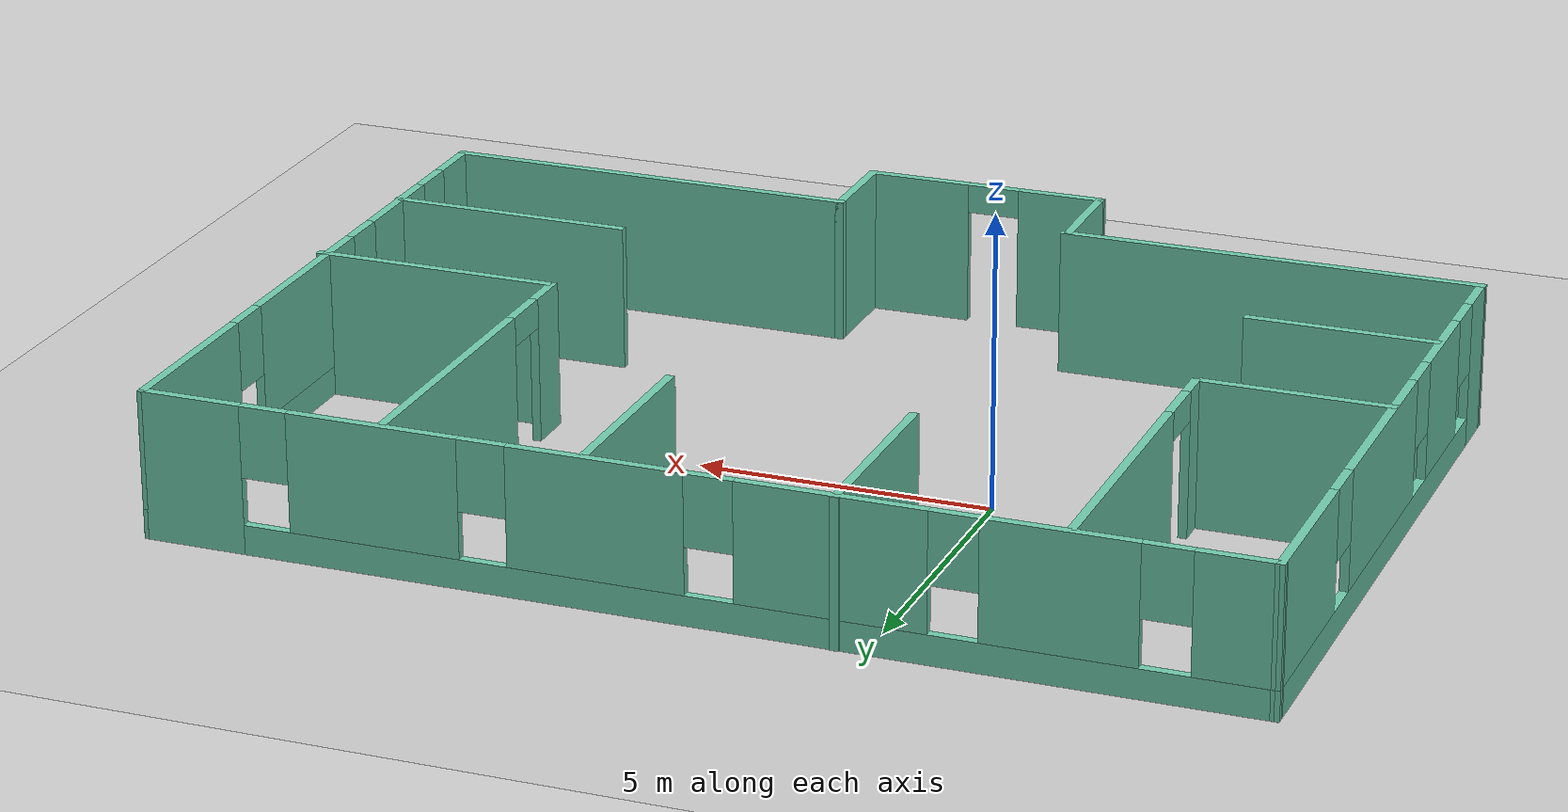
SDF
<sdf version="1.6">
 <world name="default">
  <model name="ground_plane">
   <static>1</static>
   <link name="link">
    <collision name="collision">
     <geometry><plane><normal>0 0 1</normal><size>100 100</size></plane></geometry>
     <surface><friction><ode><mu>100</mu><mu2>50</mu2></ode></friction></surface>
    </collision>
    <visual name="visual">
     <cast_shadows>0</cast_shadows>
     <geometry><plane><normal>0 0 1</normal><size>100 100</size></plane></geometry>
     <material>
      <script><uri>file://media/materials/scripts/gazebo.material</uri><name>Gazebo/Grey</name></script>
     </material>
    </visual>
   </link>
  </model>
  <model name="ER_building">
   <pose>2.87526 -1.01785 0 0 -0 0</pose>
   <link name="Wall_10">
    <collision name="Wall_10_Collision">
     <geometry><box><size>7.29057 0.15 2.5</size></box></geometry>
     <pose>0 0 1.25 0 -0 0</pose>
    </collision>
    <visual name="Wall_10_Visual">
     <pose>0 0 1.25 0 -0 0</pose>
     <geometry><box><size>7.29057 0.15 2.5</size></box></geometry>
     <material>
      <script><uri>file://media/materials/scripts/gazebo.material</uri><name>Gazebo/Grey</name></script>
      <ambient>0.435294 0.796078 0.67451 1</ambient>
     </material>
     <meta><layer>0</layer></meta>
    </visual>
    <pose>-5.64334 -5.06011 0 0 0 -3.13593</pose>
   </link>
   <link name="Wall_11">
    <pose>-9.21357 0.84466 0 0 -0 1.5708</pose>
    <visual name="Wall_11_Visual_0">
     <pose>-5.51337 0 1.25 0 -0 0</pose>
     <geometry><box><size>0.973269 0.15 2.5</size></box></geometry>
     <material>
      <script><uri>file://media/materials/scripts/gazebo.material</uri><name>Gazebo/Grey</name></script>
      <ambient>0.435294 0.796078 0.67451 1</ambient>
     </material>
     <meta><layer>0</layer></meta>
    </visual>
    <collision name="Wall_11_Collision_0">
     <geometry><box><size>0.973269 0.15 2.5</size></box></geometry>
     <pose>-5.51337 0 1.25 0 -0 0</pose>
    </collision>
    <visual name="Wall_11_Visual_1">
     <pose>0.486634 0 0.25 0 -0 0</pose>
     <geometry><box><size>11.0267 0.15 0.5</size></box></geometry>
     <material>
      <script><uri>file://media/materials/scripts/gazebo.material</uri><name>Gazebo/Grey</name></script>
      <ambient>0.435294 0.796078 0.67451 1</ambient>
     </material>
     <meta><layer>0</layer></meta>
    </visual>
    <collision name="Wall_11_Collision_1">
     <geometry><box><size>11.0267 0.15 0.5</size></box></geometry>
     <pose>0.486634 0 0.25 0 -0 0</pose>
    </collision>
    <visual name="Wall_11_Visual_2">
     <pose>-3.27147 0 1.5 0 -0 0</pose>
     <geometry><box><size>1.91052 0.15 2</size></box></geometry>
     <material>
      <script><uri>file://media/materials/scripts/gazebo.material</uri><name>Gazebo/Grey</name></script>
      <ambient>0.435294 0.796078 0.67451 1</ambient>
     </material>
     <meta><layer>0</layer></meta>
    </visual>
    <collision name="Wall_11_Collision_2">
     <geometry><box><size>1.91052 0.15 2</size></box></geometry>
     <pose>-3.27147 0 1.5 0 -0 0</pose>
    </collision>
    <visual name="Wall_11_Visual_3">
     <pose>0.38976 0 1.5 0 -0 0</pose>
     <geometry><box><size>3.81194 0.15 2</size></box></geometry>
     <material>
      <script><uri>file://media/materials/scripts/gazebo.material</uri><name>Gazebo/Grey</name></script>
      <ambient>0.435294 0.796078 0.67451 1</ambient>
     </material>
     <meta><layer>0</layer></meta>
    </visual>
    <collision name="Wall_11_Collision_3">
     <geometry><box><size>3.81194 0.15 2</size></box></geometry>
     <pose>0.38976 0 1.5 0 -0 0</pose>
    </collision>
    <visual name="Wall_11_Visual_4">
     <pose>4.54786 0 1.5 0 -0 0</pose>
     <geometry><box><size>2.90427 0.15 2</size></box></geometry>
     <material>
      <script><uri>file://media/materials/scripts/gazebo.material</uri><name>Gazebo/Grey</name></script>
      <ambient>0.435294 0.796078 0.67451 1</ambient>
     </material>
     <meta><layer>0</layer></meta>
    </visual>
    <collision name="Wall_11_Collision_4">
     <geometry><box><size>2.90427 0.15 2</size></box></geometry>
     <pose>4.54786 0 1.5 0 -0 0</pose>
    </collision>
    <visual name="Wall_11_Visual_5">
     <pose>-4.62673 0 1.9 0 -0 0</pose>
     <geometry><box><size>0.8 0.15 1.2</size></box></geometry>
     <material>
      <script><uri>file://media/materials/scripts/gazebo.material</uri><name>Gazebo/Grey</name></script>
      <ambient>0.435294 0.796078 0.67451 1</ambient>
     </material>
     <meta><layer>0</layer></meta>
    </visual>
    <collision name="Wall_11_Collision_5">
     <geometry><box><size>0.8 0.15 1.2</size></box></geometry>
     <pose>-4.62673 0 1.9 0 -0 0</pose>
    </collision>
    <visual name="Wall_11_Visual_6">
     <pose>-1.91621 0 1.9 0 -0 0</pose>
     <geometry><box><size>0.8 0.15 1.2</size></box></geometry>
     <material>
      <script><uri>file://media/materials/scripts/gazebo.material</uri><name>Gazebo/Grey</name></script>
      <ambient>0.435294 0.796078 0.67451 1</ambient>
     </material>
     <meta><layer>0</layer></meta>
    </visual>
    <collision name="Wall_11_Collision_6">
     <geometry><box><size>0.8 0.15 1.2</size></box></geometry>
     <pose>-1.91621 0 1.9 0 -0 0</pose>
    </collision>
    <visual name="Wall_11_Visual_7">
     <pose>2.69573 0 1.9 0 -0 0</pose>
     <geometry><box><size>0.8 0.15 1.2</size></box></geometry>
     <material>
      <script><uri>file://media/materials/scripts/gazebo.material</uri><name>Gazebo/Grey</name></script>
      <ambient>0.435294 0.796078 0.67451 1</ambient>
     </material>
     <meta><layer>0</layer></meta>
    </visual>
    <collision name="Wall_11_Collision_7">
     <geometry><box><size>0.8 0.15 1.2</size></box></geometry>
     <pose>2.69573 0 1.9 0 -0 0</pose>
    </collision>
   </link>
   <link name="Wall_14">
    <collision name="Wall_14_Collision">
     <geometry><box><size>7.25 0.15 2.5</size></box></geometry>
     <pose>0 0 1.25 0 -0 0</pose>
    </collision>
    <visual name="Wall_14_Visual">
     <pose>0 0 1.25 0 -0 0</pose>
     <geometry><box><size>7.25 0.15 2.5</size></box></geometry>
     <material>
      <script><uri>file://media/materials/scripts/gazebo.material</uri><name>Gazebo/Grey</name></script>
      <ambient>0.435294 0.796078 0.67451 1</ambient>
     </material>
     <meta><layer>0</layer></meta>
    </visual>
    <pose>5.56316 -5.11758 0 0 -0 0</pose>
   </link>
   <link name="Wall_16">
    <collision name="Wall_16_Collision">
     <geometry><box><size>1.75 0.15 2.5</size></box></geometry>
     <pose>0 0 1.25 0 -0 0</pose>
    </collision>
    <visual name="Wall_16_Visual">
     <pose>0 0 1.25 0 -0 0</pose>
     <geometry><box><size>1.75 0.15 2.5</size></box></geometry>
     <material>
      <script><uri>file://media/materials/scripts/gazebo.material</uri><name>Gazebo/Grey</name></script>
      <ambient>0.435294 0.796078 0.67451 1</ambient>
     </material>
     <meta><layer>0</layer></meta>
    </visual>
    <pose>2.01316 -5.91758 0 0 0 -1.5708</pose>
   </link>
   <link name="Wall_17">
    <pose>-0.050206 -6.74668 0 0 0 -3.12749</pose>
    <visual name="Wall_17_Visual_0">
     <pose>-1.21254 0 1.25 0 -0 0</pose>
     <geometry><box><size>1.85205 0.15 2.5</size></box></geometry>
     <material>
      <script><uri>file://media/materials/scripts/gazebo.material</uri><name>Gazebo/Grey</name></script>
      <ambient>0.435294 0.796078 0.67451 1</ambient>
     </material>
     <meta><layer>0</layer></meta>
    </visual>
    <collision name="Wall_17_Collision_0">
     <geometry><box><size>1.85205 0.15 2.5</size></box></geometry>
     <pose>-1.21254 0 1.25 0 -0 0</pose>
    </collision>
    <visual name="Wall_17_Visual_1">
     <pose>1.37603 0 1.25 0 -0 0</pose>
     <geometry><box><size>1.52508 0.15 2.5</size></box></geometry>
     <material>
      <script><uri>file://media/materials/scripts/gazebo.material</uri><name>Gazebo/Grey</name></script>
      <ambient>0.435294 0.796078 0.67451 1</ambient>
     </material>
     <meta><layer>0</layer></meta>
    </visual>
    <collision name="Wall_17_Collision_1">
     <geometry><box><size>1.52508 0.15 2.5</size></box></geometry>
     <pose>1.37603 0 1.25 0 -0 0</pose>
    </collision>
    <visual name="Wall_17_Visual_2">
     <pose>0.163486 0 2.25 0 -0 0</pose>
     <geometry><box><size>0.9 0.15 0.5</size></box></geometry>
     <material>
      <script><uri>file://media/materials/scripts/gazebo.material</uri><name>Gazebo/Grey</name></script>
      <ambient>0.435294 0.796078 0.67451 1</ambient>
     </material>
     <meta><layer>0</layer></meta>
    </visual>
    <collision name="Wall_17_Collision_2">
     <geometry><box><size>0.9 0.15 0.5</size></box></geometry>
     <pose>0.163486 0 2.25 0 -0 0</pose>
    </collision>
   </link>
   <link name="Wall_19">
    <pose>9.11316 0.807418 0 0 -0 1.5708</pose>
    <visual name="Wall_19_Visual_0">
     <pose>-5.47452 0 1.25 0 -0 0</pose>
     <geometry><box><size>1.05097 0.15 2.5</size></box></geometry>
     <material>
      <script><uri>file://media/materials/scripts/gazebo.material</uri><name>Gazebo/Grey</name></script>
      <ambient>0.435294 0.796078 0.67451 1</ambient>
     </material>
     <meta><layer>0</layer></meta>
    </visual>
    <collision name="Wall_19_Collision_0">
     <geometry><box><size>1.05097 0.15 2.5</size></box></geometry>
     <pose>-5.47452 0 1.25 0 -0 0</pose>
    </collision>
    <visual name="Wall_19_Visual_1">
     <pose>0.525483 0 0.25 0 -0 0</pose>
     <geometry><box><size>10.949 0.15 0.5</size></box></geometry>
     <material>
      <script><uri>file://media/materials/scripts/gazebo.material</uri><name>Gazebo/Grey</name></script>
      <ambient>0.435294 0.796078 0.67451 1</ambient>
     </material>
     <meta><layer>0</layer></meta>
    </visual>
    <collision name="Wall_19_Collision_1">
     <geometry><box><size>10.949 0.15 0.5</size></box></geometry>
     <pose>0.525483 0 0.25 0 -0 0</pose>
    </collision>
    <visual name="Wall_19_Visual_2">
     <pose>-3.17354 0 1.5 0 -0 0</pose>
     <geometry><box><size>1.95098 0.15 2</size></box></geometry>
     <material>
      <script><uri>file://media/materials/scripts/gazebo.material</uri><name>Gazebo/Grey</name></script>
      <ambient>0.435294 0.796078 0.67451 1</ambient>
     </material>
     <meta><layer>0</layer></meta>
    </visual>
    <collision name="Wall_19_Collision_2">
     <geometry><box><size>1.95098 0.15 2</size></box></geometry>
     <pose>-3.17354 0 1.5 0 -0 0</pose>
    </collision>
    <visual name="Wall_19_Visual_3">
     <pose>0.325863 0 1.5 0 -0 0</pose>
     <geometry><box><size>3.44784 0.15 2</size></box></geometry>
     <material>
      <script><uri>file://media/materials/scripts/gazebo.material</uri><name>Gazebo/Grey</name></script>
      <ambient>0.435294 0.796078 0.67451 1</ambient>
     </material>
     <meta><layer>0</layer></meta>
    </visual>
    <collision name="Wall_19_Collision_3">
     <geometry><box><size>3.44784 0.15 2</size></box></geometry>
     <pose>0.325863 0 1.5 0 -0 0</pose>
    </collision>
    <visual name="Wall_19_Visual_4">
     <pose>4.42489 0 1.5 0 -0 0</pose>
     <geometry><box><size>3.15022 0.15 2</size></box></geometry>
     <material>
      <script><uri>file://media/materials/scripts/gazebo.material</uri><name>Gazebo/Grey</name></script>
      <ambient>0.435294 0.796078 0.67451 1</ambient>
     </material>
     <meta><layer>0</layer></meta>
    </visual>
    <collision name="Wall_19_Collision_4">
     <geometry><box><size>3.15022 0.15 2</size></box></geometry>
     <pose>4.42489 0 1.5 0 -0 0</pose>
    </collision>
    <visual name="Wall_19_Visual_5">
     <pose>-4.54903 0 1.9 0 -0 0</pose>
     <geometry><box><size>0.8 0.15 1.2</size></box></geometry>
     <material>
      <script><uri>file://media/materials/scripts/gazebo.material</uri><name>Gazebo/Grey</name></script>
      <ambient>0.435294 0.796078 0.67451 1</ambient>
     </material>
     <meta><layer>0</layer></meta>
    </visual>
    <collision name="Wall_19_Collision_5">
     <geometry><box><size>0.8 0.15 1.2</size></box></geometry>
     <pose>-4.54903 0 1.9 0 -0 0</pose>
    </collision>
    <visual name="Wall_19_Visual_6">
     <pose>-1.79805 0 1.9 0 -0 0</pose>
     <geometry><box><size>0.8 0.15 1.2</size></box></geometry>
     <material>
      <script><uri>file://media/materials/scripts/gazebo.material</uri><name>Gazebo/Grey</name></script>
      <ambient>0.435294 0.796078 0.67451 1</ambient>
     </material>
     <meta><layer>0</layer></meta>
    </visual>
    <collision name="Wall_19_Collision_6">
     <geometry><box><size>0.8 0.15 1.2</size></box></geometry>
     <pose>-1.79805 0 1.9 0 -0 0</pose>
    </collision>
    <visual name="Wall_19_Visual_7">
     <pose>2.44978 0 1.9 0 -0 0</pose>
     <geometry><box><size>0.8 0.15 1.2</size></box></geometry>
     <material>
      <script><uri>file://media/materials/scripts/gazebo.material</uri><name>Gazebo/Grey</name></script>
      <ambient>0.435294 0.796078 0.67451 1</ambient>
     </material>
     <meta><layer>0</layer></meta>
    </visual>
    <collision name="Wall_19_Collision_7">
     <geometry><box><size>0.8 0.15 1.2</size></box></geometry>
     <pose>2.44978 0 1.9 0 -0 0</pose>
    </collision>
   </link>
   <link name="Wall_21">
    <pose>-0.050206 6.75104 0 0 -0 3.13956</pose>
    <visual name="Wall_21_Visual_0">
     <pose>-8.35916 0 1.25 0 -0 0</pose>
     <geometry><box><size>1.75844 0.15 2.5</size></box></geometry>
     <material>
      <script><uri>file://media/materials/scripts/gazebo.material</uri><name>Gazebo/Grey</name></script>
      <ambient>0.435294 0.796078 0.67451 1</ambient>
     </material>
     <meta><layer>0</layer></meta>
    </visual>
    <collision name="Wall_21_Collision_0">
     <geometry><box><size>1.75844 0.15 2.5</size></box></geometry>
     <pose>-8.35916 0 1.25 0 -0 0</pose>
    </collision>
    <visual name="Wall_21_Visual_1">
     <pose>0.87922 0 0.25 0 -0 0</pose>
     <geometry><box><size>16.7183 0.15 0.5</size></box></geometry>
     <material>
      <script><uri>file://media/materials/scripts/gazebo.material</uri><name>Gazebo/Grey</name></script>
      <ambient>0.435294 0.796078 0.67451 1</ambient>
     </material>
     <meta><layer>0</layer></meta>
    </visual>
    <collision name="Wall_21_Collision_1">
     <geometry><box><size>16.7183 0.15 0.5</size></box></geometry>
     <pose>0.87922 0 0.25 0 -0 0</pose>
    </collision>
    <visual name="Wall_21_Visual_2">
     <pose>-5.23914 0 1.5 0 -0 0</pose>
     <geometry><box><size>2.88162 0.15 2</size></box></geometry>
     <material>
      <script><uri>file://media/materials/scripts/gazebo.material</uri><name>Gazebo/Grey</name></script>
      <ambient>0.435294 0.796078 0.67451 1</ambient>
     </material>
     <meta><layer>0</layer></meta>
    </visual>
    <collision name="Wall_21_Collision_2">
     <geometry><box><size>2.88162 0.15 2</size></box></geometry>
     <pose>-5.23914 0 1.5 0 -0 0</pose>
    </collision>
    <visual name="Wall_21_Visual_3">
     <pose>-1.53737 0 1.5 0 -0 0</pose>
     <geometry><box><size>2.92191 0.15 2</size></box></geometry>
     <material>
      <script><uri>file://media/materials/scripts/gazebo.material</uri><name>Gazebo/Grey</name></script>
      <ambient>0.435294 0.796078 0.67451 1</ambient>
     </material>
     <meta><layer>0</layer></meta>
    </visual>
    <collision name="Wall_21_Collision_3">
     <geometry><box><size>2.92191 0.15 2</size></box></geometry>
     <pose>-1.53737 0 1.5 0 -0 0</pose>
    </collision>
    <visual name="Wall_21_Visual_4">
     <pose>2.26532 0 1.5 0 -0 0</pose>
     <geometry><box><size>3.08348 0.15 2</size></box></geometry>
     <material>
      <script><uri>file://media/materials/scripts/gazebo.material</uri><name>Gazebo/Grey</name></script>
      <ambient>0.435294 0.796078 0.67451 1</ambient>
     </material>
     <meta><layer>0</layer></meta>
    </visual>
    <collision name="Wall_21_Collision_4">
     <geometry><box><size>3.08348 0.15 2</size></box></geometry>
     <pose>2.26532 0 1.5 0 -0 0</pose>
    </collision>
    <visual name="Wall_21_Visual_5">
     <pose>5.84571 0 1.5 0 -0 0</pose>
     <geometry><box><size>2.47731 0.15 2</size></box></geometry>
     <material>
      <script><uri>file://media/materials/scripts/gazebo.material</uri><name>Gazebo/Grey</name></script>
      <ambient>0.435294 0.796078 0.67451 1</ambient>
     </material>
     <meta><layer>0</layer></meta>
    </visual>
    <collision name="Wall_21_Collision_5">
     <geometry><box><size>2.47731 0.15 2</size></box></geometry>
     <pose>5.84571 0 1.5 0 -0 0</pose>
    </collision>
    <visual name="Wall_21_Visual_6">
     <pose>8.56137 0 1.5 0 -0 0</pose>
     <geometry><box><size>1.35402 0.15 2</size></box></geometry>
     <material>
      <script><uri>file://media/materials/scripts/gazebo.material</uri><name>Gazebo/Grey</name></script>
      <ambient>0.435294 0.796078 0.67451 1</ambient>
     </material>
     <meta><layer>0</layer></meta>
    </visual>
    <collision name="Wall_21_Collision_6">
     <geometry><box><size>1.35402 0.15 2</size></box></geometry>
     <pose>8.56137 0 1.5 0 -0 0</pose>
    </collision>
    <visual name="Wall_21_Visual_7">
     <pose>-7.07994 0 1.9 0 -0 0</pose>
     <geometry><box><size>0.8 0.15 1.2</size></box></geometry>
     <material>
      <script><uri>file://media/materials/scripts/gazebo.material</uri><name>Gazebo/Grey</name></script>
      <ambient>0.435294 0.796078 0.67451 1</ambient>
     </material>
     <meta><layer>0</layer></meta>
    </visual>
    <collision name="Wall_21_Collision_7">
     <geometry><box><size>0.8 0.15 1.2</size></box></geometry>
     <pose>-7.07994 0 1.9 0 -0 0</pose>
    </collision>
    <visual name="Wall_21_Visual_8">
     <pose>-3.39833 0 1.9 0 -0 0</pose>
     <geometry><box><size>0.8 0.15 1.2</size></box></geometry>
     <material>
      <script><uri>file://media/materials/scripts/gazebo.material</uri><name>Gazebo/Grey</name></script>
      <ambient>0.435294 0.796078 0.67451 1</ambient>
     </material>
     <meta><layer>0</layer></meta>
    </visual>
    <collision name="Wall_21_Collision_8">
     <geometry><box><size>0.8 0.15 1.2</size></box></geometry>
     <pose>-3.39833 0 1.9 0 -0 0</pose>
    </collision>
    <visual name="Wall_21_Visual_9">
     <pose>0.323578 0 1.9 0 -0 0</pose>
     <geometry><box><size>0.8 0.15 1.2</size></box></geometry>
     <material>
      <script><uri>file://media/materials/scripts/gazebo.material</uri><name>Gazebo/Grey</name></script>
      <ambient>0.435294 0.796078 0.67451 1</ambient>
     </material>
     <meta><layer>0</layer></meta>
    </visual>
    <collision name="Wall_21_Collision_9">
     <geometry><box><size>0.8 0.15 1.2</size></box></geometry>
     <pose>0.323578 0 1.9 0 -0 0</pose>
    </collision>
    <visual name="Wall_21_Visual_10">
     <pose>4.20706 0 1.9 0 -0 0</pose>
     <geometry><box><size>0.8 0.15 1.2</size></box></geometry>
     <material>
      <script><uri>file://media/materials/scripts/gazebo.material</uri><name>Gazebo/Grey</name></script>
      <ambient>0.435294 0.796078 0.67451 1</ambient>
     </material>
     <meta><layer>0</layer></meta>
    </visual>
    <collision name="Wall_21_Collision_10">
     <geometry><box><size>0.8 0.15 1.2</size></box></geometry>
     <pose>4.20706 0 1.9 0 -0 0</pose>
    </collision>
    <visual name="Wall_21_Visual_11">
     <pose>7.48437 0 1.9 0 -0 0</pose>
     <geometry><box><size>0.8 0.15 1.2</size></box></geometry>
     <material>
      <script><uri>file://media/materials/scripts/gazebo.material</uri><name>Gazebo/Grey</name></script>
      <ambient>0.435294 0.796078 0.67451 1</ambient>
     </material>
     <meta><layer>0</layer></meta>
    </visual>
    <collision name="Wall_21_Collision_11">
     <geometry><box><size>0.8 0.15 1.2</size></box></geometry>
     <pose>7.48437 0 1.9 0 -0 0</pose>
    </collision>
   </link>
   <link name="Wall_23">
    <pose>-6.03776 3.60547 0 0 0 -1.5708</pose>
    <visual name="Wall_23_Visual_0">
     <pose>-0.723343 0 1.25 0 -0 0</pose>
     <geometry><box><size>4.80331 0.15 2.5</size></box></geometry>
     <material>
      <script><uri>file://media/materials/scripts/gazebo.material</uri><name>Gazebo/Grey</name></script>
      <ambient>0.435294 0.796078 0.67451 1</ambient>
     </material>
     <meta><layer>0</layer></meta>
    </visual>
    <collision name="Wall_23_Collision_0">
     <geometry><box><size>4.80331 0.15 2.5</size></box></geometry>
     <pose>-0.723343 0 1.25 0 -0 0</pose>
    </collision>
    <visual name="Wall_23_Visual_1">
     <pose>2.85166 0 1.25 0 -0 0</pose>
     <geometry><box><size>0.546686 0.15 2.5</size></box></geometry>
     <material>
      <script><uri>file://media/materials/scripts/gazebo.material</uri><name>Gazebo/Grey</name></script>
      <ambient>0.435294 0.796078 0.67451 1</ambient>
     </material>
     <meta><layer>0</layer></meta>
    </visual>
    <collision name="Wall_23_Collision_1">
     <geometry><box><size>0.546686 0.15 2.5</size></box></geometry>
     <pose>2.85166 0 1.25 0 -0 0</pose>
    </collision>
    <visual name="Wall_23_Visual_2">
     <pose>2.12831 0 2.25 0 -0 0</pose>
     <geometry><box><size>0.9 0.15 0.5</size></box></geometry>
     <material>
      <script><uri>file://media/materials/scripts/gazebo.material</uri><name>Gazebo/Grey</name></script>
      <ambient>0.435294 0.796078 0.67451 1</ambient>
     </material>
     <meta><layer>0</layer></meta>
    </visual>
    <collision name="Wall_23_Collision_2">
     <geometry><box><size>0.9 0.15 0.5</size></box></geometry>
     <pose>2.12831 0 2.25 0 -0 0</pose>
    </collision>
   </link>
   <link name="Wall_25">
    <collision name="Wall_25_Collision">
     <geometry><box><size>3.5 0.15 2.5</size></box></geometry>
     <pose>0 0 1.25 0 -0 0</pose>
    </collision>
    <visual name="Wall_25_Visual">
     <pose>0 0 1.25 0 -0 0</pose>
     <geometry><box><size>3.5 0.15 2.5</size></box></geometry>
     <material>
      <script><uri>file://media/materials/scripts/gazebo.material</uri><name>Gazebo/Grey</name></script>
      <ambient>0.435294 0.796078 0.67451 1</ambient>
     </material>
     <meta><layer>0</layer></meta>
    </visual>
    <pose>-2.39676 5.10183 0 0 0 -1.5708</pose>
   </link>
   <link name="Wall_27">
    <collision name="Wall_27_Collision">
     <geometry><box><size>3.5 0.15 2.5</size></box></geometry>
     <pose>0 0 1.25 0 -0 0</pose>
    </collision>
    <visual name="Wall_27_Visual">
     <pose>0 0 1.25 0 -0 0</pose>
     <geometry><box><size>3.5 0.15 2.5</size></box></geometry>
     <material>
      <script><uri>file://media/materials/scripts/gazebo.material</uri><name>Gazebo/Grey</name></script>
      <ambient>0.435294 0.796078 0.67451 1</ambient>
     </material>
     <meta><layer>0</layer></meta>
    </visual>
    <pose>1.68926 5.02092 0 0 0 -1.5708</pose>
   </link>
   <link name="Wall_29">
    <pose>5.04707 3.44001 0 0 0 -1.5708</pose>
    <visual name="Wall_29_Visual_0">
     <pose>-0.848343 0 1.25 0 -0 0</pose>
     <geometry><box><size>4.80331 0.15 2.5</size></box></geometry>
     <material>
      <script><uri>file://media/materials/scripts/gazebo.material</uri><name>Gazebo/Grey</name></script>
      <ambient>0.435294 0.796078 0.67451 1</ambient>
     </material>
     <meta><layer>0</layer></meta>
    </visual>
    <collision name="Wall_29_Collision_0">
     <geometry><box><size>4.80331 0.15 2.5</size></box></geometry>
     <pose>-0.848343 0 1.25 0 -0 0</pose>
    </collision>
    <visual name="Wall_29_Visual_1">
     <pose>2.85166 0 1.25 0 -0 0</pose>
     <geometry><box><size>0.796686 0.15 2.5</size></box></geometry>
     <material>
      <script><uri>file://media/materials/scripts/gazebo.material</uri><name>Gazebo/Grey</name></script>
      <ambient>0.435294 0.796078 0.67451 1</ambient>
     </material>
     <meta><layer>0</layer></meta>
    </visual>
    <collision name="Wall_29_Collision_1">
     <geometry><box><size>0.796686 0.15 2.5</size></box></geometry>
     <pose>2.85166 0 1.25 0 -0 0</pose>
    </collision>
    <visual name="Wall_29_Visual_2">
     <pose>2.00331 0 2.25 0 -0 0</pose>
     <geometry><box><size>0.9 0.15 0.5</size></box></geometry>
     <material>
      <script><uri>file://media/materials/scripts/gazebo.material</uri><name>Gazebo/Grey</name></script>
      <ambient>0.435294 0.796078 0.67451 1</ambient>
     </material>
     <meta><layer>0</layer></meta>
    </visual>
    <collision name="Wall_29_Collision_2">
     <geometry><box><size>0.9 0.15 0.5</size></box></geometry>
     <pose>2.00331 0 2.25 0 -0 0</pose>
    </collision>
   </link>
   <link name="Wall_31">
    <collision name="Wall_31_Collision">
     <geometry><box><size>3.25 0.15 2.5</size></box></geometry>
     <pose>0 0 1.25 0 -0 0</pose>
    </collision>
    <visual name="Wall_31_Visual">
     <pose>0 0 1.25 0 -0 0</pose>
     <geometry><box><size>3.25 0.15 2.5</size></box></geometry>
     <material>
      <script><uri>file://media/materials/scripts/gazebo.material</uri><name>Gazebo/Grey</name></script>
      <ambient>0.435294 0.796078 0.67451 1</ambient>
     </material>
     <meta><layer>0</layer></meta>
    </visual>
    <pose>-7.60284 -2.36613 0 0 -0 0</pose>
   </link>
   <link name="Wall_33">
    <collision name="Wall_33_Collision">
     <geometry><box><size>3.25 0.15 2.5</size></box></geometry>
     <pose>0 0 1.25 0 -0 0</pose>
    </collision>
    <visual name="Wall_33_Visual">
     <pose>0 0 1.25 0 -0 0</pose>
     <geometry><box><size>3.25 0.15 2.5</size></box></geometry>
     <material>
      <script><uri>file://media/materials/scripts/gazebo.material</uri><name>Gazebo/Grey</name></script>
      <ambient>0.435294 0.796078 0.67451 1</ambient>
     </material>
     <meta><layer>0</layer></meta>
    </visual>
    <pose>-7.6433 0.50622 0 0 -0 0</pose>
   </link>
   <link name="Wall_35">
    <collision name="Wall_35_Collision">
     <geometry><box><size>4.25 0.15 2.5</size></box></geometry>
     <pose>0 0 1.25 0 -0 0</pose>
    </collision>
    <visual name="Wall_35_Visual">
     <pose>0 0 1.25 0 -0 0</pose>
     <geometry><box><size>4.25 0.15 2.5</size></box></geometry>
     <material>
      <script><uri>file://media/materials/scripts/gazebo.material</uri><name>Gazebo/Grey</name></script>
      <ambient>0.435294 0.796078 0.67451 1</ambient>
     </material>
     <meta><layer>0</layer></meta>
    </visual>
    <pose>7.08308 -2.5684 0 0 -0 3.14159</pose>
   </link>
   <link name="Wall_37">
    <collision name="Wall_37_Collision">
     <geometry><box><size>4.25 0.15 2.5</size></box></geometry>
     <pose>0 0 1.25 0 -0 0</pose>
    </collision>
    <visual name="Wall_37_Visual">
     <pose>0 0 1.25 0 -0 0</pose>
     <geometry><box><size>4.25 0.15 2.5</size></box></geometry>
     <material>
      <script><uri>file://media/materials/scripts/gazebo.material</uri><name>Gazebo/Grey</name></script>
      <ambient>0.435294 0.796078 0.67451 1</ambient>
     </material>
     <meta><layer>0</layer></meta>
    </visual>
    <pose>7.16399 0.263486 0 0 -0 3.14159</pose>
   </link>
   <link name="Wall_9">
    <collision name="Wall_9_Collision">
     <geometry><box><size>1.84544 0.15 2.5</size></box></geometry>
     <pose>0 0 1.25 0 -0 0</pose>
    </collision>
    <visual name="Wall_9_Visual">
     <pose>0 0 1.25 0 -0 0</pose>
     <geometry><box><size>1.84544 0.15 2.5</size></box></geometry>
     <material>
      <script><uri>file://media/materials/scripts/gazebo.material</uri><name>Gazebo/Grey</name></script>
      <ambient>0.435294 0.796078 0.67451 1</ambient>
     </material>
     <meta><layer>0</layer></meta>
    </visual>
    <pose>-2.11357 -5.92806 0 0 -0 1.5708</pose>
   </link>
   <static>1</static>
  </model>
  <model name="ER_cart6_0">
   <link name="link_0_clone">
    <pose>-0.060175 -0.026134 0.361383 0 -0 0</pose>
    <inertial>
     <mass>1</mass>
     <inertia>
      <ixx>0.166667</ixx>
      <ixy>0</ixy>
      <ixz>0</ixz>
      <iyy>0.166667</iyy>
      <iyz>0</iyz>
      <izz>0.166667</izz>
     </inertia>
    </inertial>
    <visual name="visual">
     <pose>0 0 0.3 0 -0 0</pose>
     <geometry><box><size>1 0.6 0.05</size></box></geometry>
     <material>
      <lighting>1</lighting>
      <script><uri>file://media/materials/scripts/gazebo.material</uri><name>Gazebo/Grey</name></script>
      <shader type="pixel"><normal_map>__default__</normal_map></shader>
      <ambient>0.3 0.3 0.3 1</ambient>
      <diffuse>0.7 0.7 0.7 1</diffuse>
      <specular>0.01 0.01 0.01 1</specular>
      <emissive>0 0 0 1</emissive>
     </material>
    </visual>
    <visual name="visual_5">
     <pose>-0.5 -0.26 -0.05 0 -0 0</pose>
     <geometry><box><size>0.1 0.1 0.8</size></box></geometry>
     <material>
      <lighting>1</lighting>
      <script><uri>file://media/materials/scripts/gazebo.material</uri><name>Gazebo/Grey</name></script>
      <shader type="pixel"><normal_map>__default__</normal_map></shader>
      <ambient>0.3 0.3 0.3 1</ambient>
      <diffuse>0.7 0.7 0.7 1</diffuse>
      <specular>0.01 0.01 0.01 1</specular>
      <emissive>0 0 0 1</emissive>
     </material>
    </visual>
    <visual name="visual_6">
     <pose>-0.5 0.26 -0.05 0 -0 0</pose>
     <geometry><box><size>0.1 0.1 0.8</size></box></geometry>
     <material>
      <lighting>1</lighting>
      <script><uri>file://media/materials/scripts/gazebo.material</uri><name>Gazebo/Grey</name></script>
      <shader type="pixel"><normal_map>__default__</normal_map></shader>
      <ambient>0.3 0.3 0.3 1</ambient>
      <diffuse>0.7 0.7 0.7 1</diffuse>
      <specular>0.01 0.01 0.01 1</specular>
      <emissive>0 0 0 1</emissive>
     </material>
    </visual>
    <visual name="visual_4">
     <pose>0.5 -0.26 -0.05 0 -0 0</pose>
     <geometry><box><size>0.1 0.1 0.8</size></box></geometry>
     <material>
      <lighting>1</lighting>
      <script><uri>file://media/materials/scripts/gazebo.material</uri><name>Gazebo/Grey</name></script>
      <shader type="pixel"><normal_map>__default__</normal_map></shader>
      <ambient>0.3 0.3 0.3 1</ambient>
      <diffuse>0.7 0.7 0.7 1</diffuse>
      <specular>0.01 0.01 0.01 1</specular>
      <emissive>0 0 0 1</emissive>
     </material>
    </visual>
    <visual name="visual_3">
     <pose>0.5 0.26 -0.05 0 -0 0</pose>
     <geometry><box><size>0.1 0.1 0.8</size></box></geometry>
     <material>
      <lighting>1</lighting>
      <script><uri>file://media/materials/scripts/gazebo.material</uri><name>Gazebo/Grey</name></script>
      <shader type="pixel"><normal_map>__default__</normal_map></shader>
      <ambient>0.3 0.3 0.3 1</ambient>
      <diffuse>0.7 0.7 0.7 1</diffuse>
      <specular>0.01 0.01 0.01 1</specular>
      <emissive>0 0 0 1</emissive>
     </material>
    </visual>
    <visual name="visual_1">
     <geometry><box><size>1 0.6 0.05</size></box></geometry>
     <material>
      <lighting>1</lighting>
      <script><uri>file://media/materials/scripts/gazebo.material</uri><name>Gazebo/Grey</name></script>
      <shader type="pixel"><normal_map>__default__</normal_map></shader>
      <ambient>0.3 0.3 0.3 1</ambient>
      <diffuse>0.7 0.7 0.7 1</diffuse>
      <specular>0.01 0.01 0.01 1</specular>
      <emissive>0 0 0 1</emissive>
     </material>
    </visual>
    <visual name="visual_2">
     <pose>0 0 -0.3 0 -0 0</pose>
     <geometry><box><size>1 0.6 0.05</size></box></geometry>
     <material>
      <lighting>1</lighting>
      <script><uri>file://media/materials/scripts/gazebo.material</uri><name>Gazebo/Grey</name></script>
      <shader type="pixel"><normal_map>__default__</normal_map></shader>
      <ambient>0.3 0.3 0.3 1</ambient>
      <diffuse>0.7 0.7 0.7 1</diffuse>
      <specular>0.01 0.01 0.01 1</specular>
      <emissive>0 0 0 1</emissive>
     </material>
    </visual>
    <collision name="collision">
     <pose>0 0 -0.05 0 -0 0</pose>
     <geometry><box><size>1 0.6 0.8</size></box></geometry>
     <surface>
      <friction>
       <ode><mu>1</mu><mu2>1</mu2><fdir1>0 0 0</fdir1><slip1>0</slip1><slip2>0</slip2></ode>
       <torsional>
        <coefficient>1</coefficient>
        <patch_radius>0</patch_radius>
        <surface_radius>0</surface_radius>
        <use_patch_radius>1</use_patch_radius>
        <ode><slip>0</slip></ode>
       </torsional>
      </friction>
      <bounce><restitution_coefficient>0</restitution_coefficient><threshold>1e+06</threshold></bounce>
      <contact>
       <collide_without_contact>0</collide_without_contact>
       <collide_without_contact_bitmask>1</collide_without_contact_bitmask>
       <collide_bitmask>1</collide_bitmask>
       <ode>
        <soft_cfm>0</soft_cfm>
        <soft_erp>0.2</soft_erp>
        <kp>1e+13</kp>
        <kd>1</kd>
        <max_vel>0.01</max_vel>
        <min_depth>0</min_depth>
       </ode>
       <bullet>
        <split_impulse>1</split_impulse>
        <split_impulse_penetration_threshold>-0.01</split_impulse_penetration_threshold>
        <soft_cfm>0</soft_cfm>
        <soft_erp>0.2</soft_erp>
        <kp>1e+13</kp>
        <kd>1</kd>
       </bullet>
      </contact>
     </surface>
    </collision>
   </link>
   <link name="link_2_clone">
    <pose>0.473113 0.2994 -0.09134 -1.54173 0 0</pose>
    <inertial>
     <mass>0.000687654</mass>
     <inertia>
      <ixx>1.06476e-06</ixx>
      <ixy>0</ixy>
      <ixz>0</ixz>
      <iyy>1.06476e-06</iyy>
      <iyz>0</iyz>
      <izz>2.03255e-06</izz>
     </inertia>
    </inertial>
    <visual name="visual">
     <geometry><cylinder><radius>0.0768867</radius><length>0.0290866</length></cylinder></geometry>
     <material>
      <lighting>1</lighting>
      <script><uri>file://media/materials/scripts/gazebo.material</uri><name>Gazebo/Grey</name></script>
      <shader type="pixel"><normal_map>__default__</normal_map></shader>
      <ambient>0.3 0.3 0.3 1</ambient>
      <diffuse>0.7 0.7 0.7 1</diffuse>
      <specular>0.01 0.01 0.01 1</specular>
      <emissive>0 0 0 1</emissive>
     </material>
    </visual>
    <collision name="collision">
     <geometry><cylinder><radius>0.076887</radius><length>0.029087</length></cylinder></geometry>
     <surface>
      <friction>
       <ode><mu>1</mu><mu2>1</mu2><fdir1>0 0 0</fdir1><slip1>0</slip1><slip2>0</slip2></ode>
       <torsional>
        <coefficient>1</coefficient>
        <patch_radius>0</patch_radius>
        <surface_radius>0</surface_radius>
        <use_patch_radius>1</use_patch_radius>
        <ode><slip>0</slip></ode>
       </torsional>
      </friction>
      <bounce><restitution_coefficient>0</restitution_coefficient><threshold>1e+06</threshold></bounce>
      <contact>
       <collide_without_contact>0</collide_without_contact>
       <collide_without_contact_bitmask>1</collide_without_contact_bitmask>
       <collide_bitmask>1</collide_bitmask>
       <ode>
        <soft_cfm>0</soft_cfm>
        <soft_erp>0.2</soft_erp>
        <kp>1e+13</kp>
        <kd>1</kd>
        <max_vel>0.01</max_vel>
        <min_depth>0</min_depth>
       </ode>
       <bullet>
        <split_impulse>1</split_impulse>
        <split_impulse_penetration_threshold>-0.01</split_impulse_penetration_threshold>
        <soft_cfm>0</soft_cfm>
        <soft_erp>0.2</soft_erp>
        <kp>1e+13</kp>
        <kd>1</kd>
       </bullet>
      </contact>
     </surface>
    </collision>
   </link>
   <link name="link_2_clone_clone_0">
    <pose>-0.473113 0.2994 -0.09134 -1.54173 0 0</pose>
    <inertial>
     <mass>0.000687654</mass>
     <inertia>
      <ixx>1.06476e-06</ixx>
      <ixy>0</ixy>
      <ixz>0</ixz>
      <iyy>1.06476e-06</iyy>
      <iyz>0</iyz>
      <izz>2.03255e-06</izz>
     </inertia>
    </inertial>
    <visual name="visual">
     <geometry><cylinder><radius>0.0768867</radius><length>0.0290866</length></cylinder></geometry>
     <material>
      <lighting>1</lighting>
      <script><uri>file://media/materials/scripts/gazebo.material</uri><name>Gazebo/Grey</name></script>
      <shader type="pixel"><normal_map>__default__</normal_map></shader>
      <ambient>0.3 0.3 0.3 1</ambient>
      <diffuse>0.7 0.7 0.7 1</diffuse>
      <specular>0.01 0.01 0.01 1</specular>
      <emissive>0 0 0 1</emissive>
     </material>
    </visual>
    <collision name="collision">
     <geometry><cylinder><radius>0.076887</radius><length>0.029087</length></cylinder></geometry>
     <surface>
      <friction>
       <ode><mu>1</mu><mu2>1</mu2><fdir1>0 0 0</fdir1><slip1>0</slip1><slip2>0</slip2></ode>
       <torsional>
        <coefficient>1</coefficient>
        <patch_radius>0</patch_radius>
        <surface_radius>0</surface_radius>
        <use_patch_radius>1</use_patch_radius>
        <ode><slip>0</slip></ode>
       </torsional>
      </friction>
      <bounce><restitution_coefficient>0</restitution_coefficient><threshold>1e+06</threshold></bounce>
      <contact>
       <collide_without_contact>0</collide_without_contact>
       <collide_without_contact_bitmask>1</collide_without_contact_bitmask>
       <collide_bitmask>1</collide_bitmask>
       <ode>
        <soft_cfm>0</soft_cfm>
        <soft_erp>0.2</soft_erp>
        <kp>1e+13</kp>
        <kd>1</kd>
        <max_vel>0.01</max_vel>
        <min_depth>0</min_depth>
       </ode>
       <bullet>
        <split_impulse>1</split_impulse>
        <split_impulse_penetration_threshold>-0.01</split_impulse_penetration_threshold>
        <soft_cfm>0</soft_cfm>
        <soft_erp>0.2</soft_erp>
        <kp>1e+13</kp>
        <kd>1</kd>
       </bullet>
      </contact>
     </surface>
    </collision>
   </link>
   <link name="link_2_clone_clone_1">
    <pose>0.473113 -0.354144 -0.09134 -1.54173 0 0</pose>
    <inertial>
     <mass>0.00068765</mass>
     <inertia>
      <ixx>1.06e-06</ixx>
      <ixy>0</ixy>
      <ixz>0</ixz>
      <iyy>1.06e-06</iyy>
      <iyz>0</iyz>
      <izz>2.03e-06</izz>
     </inertia>
    </inertial>
    <visual name="visual">
     <geometry><cylinder><radius>0.0768867</radius><length>0.0290866</length></cylinder></geometry>
     <material>
      <lighting>1</lighting>
      <script><uri>file://media/materials/scripts/gazebo.material</uri><name>Gazebo/Grey</name></script>
      <shader type="pixel"><normal_map>__default__</normal_map></shader>
      <ambient>0.3 0.3 0.3 1</ambient>
      <diffuse>0.7 0.7 0.7 1</diffuse>
      <specular>0.01 0.01 0.01 1</specular>
      <emissive>0 0 0 1</emissive>
     </material>
    </visual>
    <collision name="collision">
     <geometry><cylinder><radius>0.076887</radius><length>0.029087</length></cylinder></geometry>
     <surface>
      <friction>
       <ode><mu>1</mu><mu2>1</mu2><fdir1>0 0 0</fdir1><slip1>0</slip1><slip2>0</slip2></ode>
       <torsional>
        <coefficient>1</coefficient>
        <patch_radius>0</patch_radius>
        <surface_radius>0</surface_radius>
        <use_patch_radius>1</use_patch_radius>
        <ode><slip>0</slip></ode>
       </torsional>
      </friction>
      <bounce><restitution_coefficient>0</restitution_coefficient><threshold>1e+06</threshold></bounce>
      <contact>
       <collide_without_contact>0</collide_without_contact>
       <collide_without_contact_bitmask>1</collide_without_contact_bitmask>
       <collide_bitmask>1</collide_bitmask>
       <ode>
        <soft_cfm>0</soft_cfm>
        <soft_erp>0.2</soft_erp>
        <kp>1e+13</kp>
        <kd>1</kd>
        <max_vel>0.01</max_vel>
        <min_depth>0</min_depth>
       </ode>
       <bullet>
        <split_impulse>1</split_impulse>
        <split_impulse_penetration_threshold>-0.01</split_impulse_penetration_threshold>
        <soft_cfm>0</soft_cfm>
        <soft_erp>0.2</soft_erp>
        <kp>1e+13</kp>
        <kd>1</kd>
       </bullet>
      </contact>
     </surface>
    </collision>
   </link>
   <link name="link_2_clone_clone_clone">
    <pose>-0.533288 -0.352906 -0.09134 -1.54173 0 0</pose>
    <inertial>
     <mass>0.00068765</mass>
     <inertia>
      <ixx>1.06e-06</ixx>
      <ixy>0</ixy>
      <ixz>0</ixz>
      <iyy>1.06e-06</iyy>
      <iyz>0</iyz>
      <izz>2.03e-06</izz>
     </inertia>
    </inertial>
    <visual name="visual">
     <geometry><cylinder><radius>0.0768867</radius><length>0.0290866</length></cylinder></geometry>
     <material>
      <lighting>1</lighting>
      <script><uri>file://media/materials/scripts/gazebo.material</uri><name>Gazebo/Grey</name></script>
      <shader type="pixel"><normal_map>__default__</normal_map></shader>
      <ambient>0.3 0.3 0.3 1</ambient>
      <diffuse>0.7 0.7 0.7 1</diffuse>
      <specular>0.01 0.01 0.01 1</specular>
      <emissive>0 0 0 1</emissive>
     </material>
    </visual>
    <collision name="collision">
     <geometry><cylinder><radius>0.076887</radius><length>0.029087</length></cylinder></geometry>
     <surface>
      <friction>
       <ode><mu>1</mu><mu2>1</mu2><fdir1>0 0 0</fdir1><slip1>0</slip1><slip2>0</slip2></ode>
       <torsional>
        <coefficient>1</coefficient>
        <patch_radius>0</patch_radius>
        <surface_radius>0</surface_radius>
        <use_patch_radius>1</use_patch_radius>
        <ode><slip>0</slip></ode>
       </torsional>
      </friction>
      <bounce><restitution_coefficient>0</restitution_coefficient><threshold>1e+06</threshold></bounce>
      <contact>
       <collide_without_contact>0</collide_without_contact>
       <collide_without_contact_bitmask>1</collide_without_contact_bitmask>
       <collide_bitmask>1</collide_bitmask>
       <ode>
        <soft_cfm>0</soft_cfm>
        <soft_erp>0.2</soft_erp>
        <kp>1e+13</kp>
        <kd>1</kd>
        <max_vel>0.01</max_vel>
        <min_depth>0</min_depth>
       </ode>
       <bullet>
        <split_impulse>1</split_impulse>
        <split_impulse_penetration_threshold>-0.01</split_impulse_penetration_threshold>
        <soft_cfm>0</soft_cfm>
        <soft_erp>0.2</soft_erp>
        <kp>1e+13</kp>
        <kd>1</kd>
       </bullet>
      </contact>
     </surface>
    </collision>
   </link>
   <joint name="link_0_clone_JOINT_2" type="revolute">
    <parent>link_0_clone</parent>
    <child>link_2_clone_clone_0</child>
    <axis>
     <xyz>0 0 1</xyz>
     <use_parent_model_frame>0</use_parent_model_frame>
     <limit>
      <lower>-1.79769e+308</lower>
      <upper>1.79769e+308</upper>
      <effort>-1</effort>
      <velocity>-1</velocity>
     </limit>
     <dynamics>
      <spring_reference>0</spring_reference>
      <spring_stiffness>0</spring_stiffness>
      <damping>0</damping>
      <friction>0</friction>
     </dynamics>
    </axis>
    <physics>
     <ode><limit><cfm>0</cfm><erp>0.2</erp></limit><suspension><cfm>0</cfm><erp>0.2</erp></suspension></ode>
    </physics>
   </joint>
   <joint name="link_0_clone_JOINT_3" type="revolute">
    <parent>link_0_clone</parent>
    <child>link_2_clone_clone_1</child>
    <axis>
     <xyz>0 0 1</xyz>
     <use_parent_model_frame>0</use_parent_model_frame>
     <limit>
      <lower>-1.79769e+308</lower>
      <upper>1.79769e+308</upper>
      <effort>-1</effort>
      <velocity>-1</velocity>
     </limit>
     <dynamics>
      <spring_reference>0</spring_reference>
      <spring_stiffness>0</spring_stiffness>
      <damping>0</damping>
      <friction>0</friction>
     </dynamics>
    </axis>
    <physics>
     <ode><limit><cfm>0</cfm><erp>0.2</erp></limit><suspension><cfm>0</cfm><erp>0.2</erp></suspension></ode>
    </physics>
   </joint>
   <joint name="link_0_clone_JOINT_4" type="revolute">
    <parent>link_0_clone</parent>
    <child>link_2_clone</child>
    <axis>
     <xyz>0 0 1</xyz>
     <use_parent_model_frame>0</use_parent_model_frame>
     <limit>
      <lower>-1.79769e+308</lower>
      <upper>1.79769e+308</upper>
      <effort>-1</effort>
      <velocity>-1</velocity>
     </limit>
     <dynamics>
      <spring_reference>0</spring_reference>
      <spring_stiffness>0</spring_stiffness>
      <damping>0</damping>
      <friction>0</friction>
     </dynamics>
    </axis>
    <physics>
     <ode><limit><cfm>0</cfm><erp>0.2</erp></limit><suspension><cfm>0</cfm><erp>0.2</erp></suspension></ode>
    </physics>
   </joint>
   <joint name="link_0_clone_JOINT_6" type="revolute">
    <parent>link_0_clone</parent>
    <child>link_2_clone_clone_clone</child>
    <axis>
     <xyz>0 0 1</xyz>
     <use_parent_model_frame>0</use_parent_model_frame>
     <limit>
      <lower>-1.79769e+308</lower>
      <upper>1.79769e+308</upper>
      <effort>-1</effort>
      <velocity>-1</velocity>
     </limit>
     <dynamics>
      <spring_reference>0</spring_reference>
      <spring_stiffness>0</spring_stiffness>
      <damping>0</damping>
      <friction>0</friction>
     </dynamics>
    </axis>
    <physics>
     <ode><limit><cfm>0</cfm><erp>0.2</erp></limit><suspension><cfm>0</cfm><erp>0.2</erp></suspension></ode>
    </physics>
   </joint>
   <static>0</static>
   <pose>9.69763 -3.97744 0.168223 -1.1e-05 -0.0001 9.8e-05</pose>
  </model>
 </world>
</sdf>
